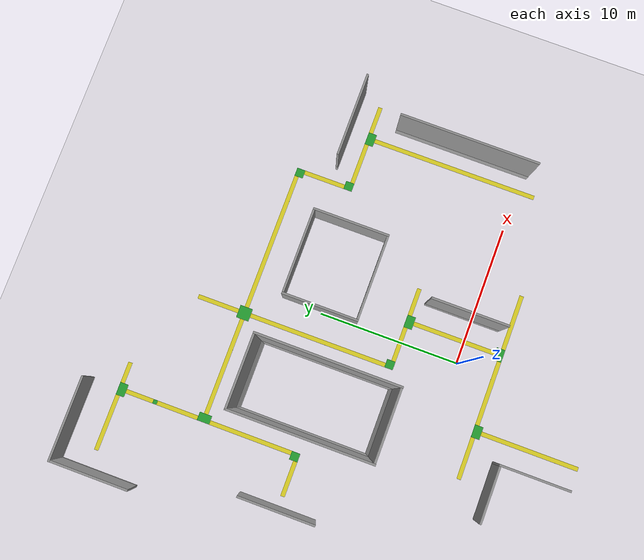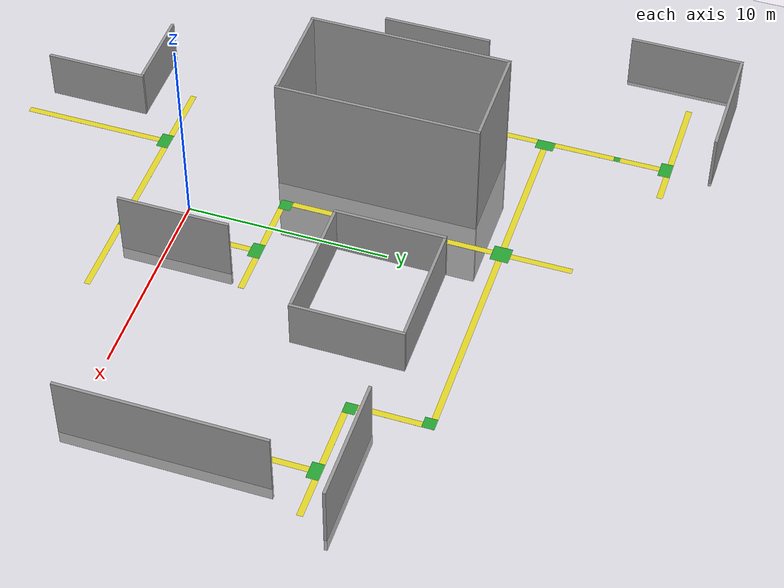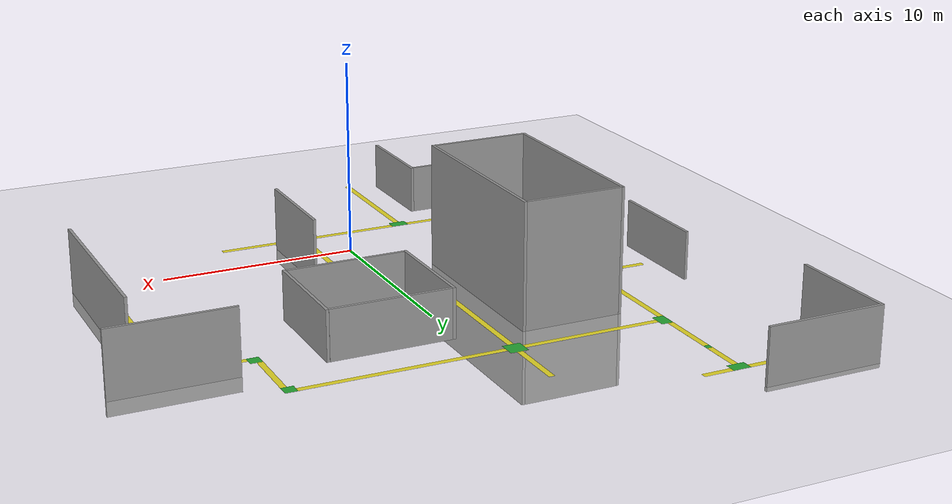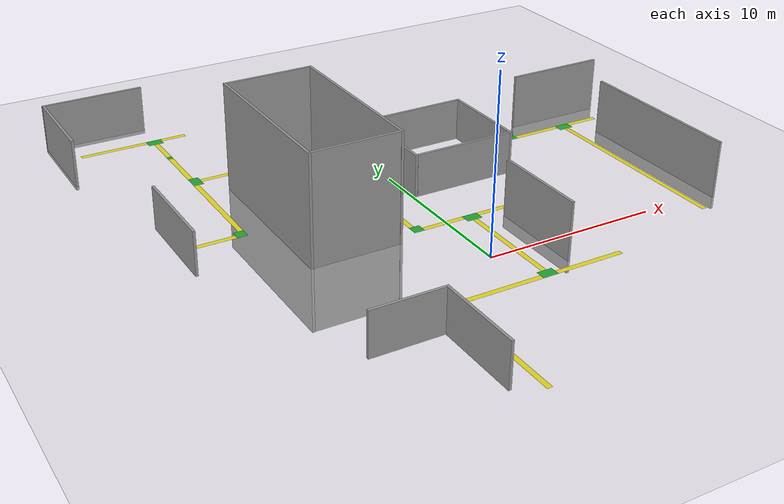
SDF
<sdf version="1.7">
 <world name="default">
  <light name="sun" type="directional">
   <pose>0 0 10 0 -0 0</pose>
   <diffuse>0.8 0.8 0.8 1</diffuse>
   <specular>0.2 0.2 0.2 1</specular>
   <attenuation>
    <range>1000</range>
    <constant>0.9</constant>
    <linear>0.01</linear>
    <quadratic>0.001</quadratic>
   </attenuation>
   <direction>-0.5 0.1 -0.9</direction>
   <spot><inner_angle>0</inner_angle><outer_angle>0</outer_angle><falloff>0</falloff></spot>
  </light>
  <include><uri>model://sideblock_path</uri><pose>0 4 0 0 0 0</pose></include>
  <include><uri>model://sideblock_maze</uri></include>
  <model name="ground_plane">
   <static>1</static>
   <link name="link">
    <collision name="collision">
     <geometry><plane><normal>0 0 1</normal><size>100 100</size></plane></geometry>
     <surface>
      <contact><collide_bitmask>65535</collide_bitmask></contact>
      <friction><ode><mu>100</mu><mu2>50</mu2></ode></friction>
     </surface>
    </collision>
    <visual name="visual">
     <cast_shadows>0</cast_shadows>
     <geometry><plane><normal>0 0 1</normal><size>100 100</size></plane></geometry>
     <material>
      <script><uri>file://media/materials/scripts/gazebo.material</uri><name>Gazebo/Grey</name></script>
     </material>
    </visual>
   </link>
  </model>
  <gravity>0 0 -9.8</gravity>
  <magnetic_field>6e-06 2.3e-05 -4.2e-05</magnetic_field>
  <atmosphere type="adiabatic"/>
  <physics type="ode">
   <max_step_size>0.001</max_step_size>
   <real_time_factor>1</real_time_factor>
   <real_time_update_rate>1000</real_time_update_rate>
  </physics>
  <scene><ambient>0.4 0.4 0.4 1</ambient><background>0.7 0.7 0.7 1</background><shadows>1</shadows></scene>
  <spherical_coordinates>
   <surface_model>EARTH_WGS84</surface_model>
   <latitude_deg>0</latitude_deg>
   <longitude_deg>0</longitude_deg>
   <elevation>0</elevation>
   <heading_deg>0</heading_deg>
  </spherical_coordinates>
 </world>
</sdf>

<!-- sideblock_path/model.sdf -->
<sdf version='1.7'>
  <model name='sideblock_path'>
    <link name='Line_11'>
      <pose>-3.96901 -10.6787 -0.000333 0 0 -1.5708</pose>
      <self_collide>0</self_collide>
      <enable_wind>0</enable_wind>
      <kinematic>0</kinematic>
      <gravity>1</gravity>
      <inertial>
        <mass>1</mass>
        <pose>0 0 0 0 -0 0</pose>
        <inertia>
          <ixx>1</ixx>
          <ixy>0</ixy>
          <ixz>0</ixz>
          <iyy>1</iyy>
          <iyz>0</iyz>
          <izz>1</izz>
        </inertia>
      </inertial>
      <visual name='Line_11_Visual'>
        <pose>0 0 0.0005 0 -0 0</pose>
        <geometry>
          <box>
            <size>7 0.3 0.001</size>
          </box>
        </geometry>
        <material>
          <script>
            <uri>file://media/materials/scripts/gazebo.material</uri>
            <name>Gazebo/Yellow</name>
          </script>
          <shader type='pixel'>
            <normal_map>__default__</normal_map>
          </shader>
          <ambient>1 1 0 1</ambient>
          <diffuse>1 1 0 1</diffuse>
          <emissive>0 0 0 1</emissive>
        </material>
        <meta>
          <layer>0</layer>
        </meta>
        <transparency>0</transparency>
        <cast_shadows>1</cast_shadows>
      </visual>
    </link>
    <link name='Line_13'>
      <pose>-3.96901 -6.87868 0 0 -0 3.14159</pose>
      <self_collide>0</self_collide>
      <enable_wind>0</enable_wind>
      <kinematic>0</kinematic>
      <gravity>1</gravity>
      <inertial>
        <mass>1.82173</mass>
        <pose>0 0 0 0 -0 0</pose>
        <inertia>
          <ixx>0.451111</ixx>
          <ixy>0</ixy>
          <ixz>0</ixz>
          <iyy>0.165474</iyy>
          <iyz>0</iyz>
          <izz>0.312963</izz>
        </inertia>
      </inertial>
      <visual name='Line_13_Visual'>
        <pose>0 0 0.0005 0 -0 0</pose>
        <geometry>
          <box>
            <size>0.9 0.6 0.001</size>
          </box>
        </geometry>
        <material>
          <script>
            <uri>file://media/materials/scripts/gazebo.material</uri>
            <name>Gazebo/Green</name>
          </script>
          <shader type='pixel'/>
        </material>
        <meta>
          <layer>0</layer>
        </meta>
        <transparency>0</transparency>
        <cast_shadows>1</cast_shadows>
      </visual>
    </link>
    <link name='Line_14'>
      <pose>-3.66901 -7.32868 0 0 0 -3e-06</pose>
      <self_collide>0</self_collide>
      <enable_wind>0</enable_wind>
      <kinematic>0</kinematic>
      <gravity>1</gravity>
      <inertial>
        <mass>1</mass>
        <pose>0 0 0 0 -0 0</pose>
        <inertia>
          <ixx>1</ixx>
          <ixy>0</ixy>
          <ixz>0</ixz>
          <iyy>1</iyy>
          <iyz>0</iyz>
          <izz>1</izz>
        </inertia>
      </inertial>
      <visual name='Line_14_Visual'>
        <pose>0 0 0.0005 0 -0 0</pose>
        <geometry>
          <box>
            <size>0.3 0.3 0.001</size>
          </box>
        </geometry>
        <material>
          <script>
            <uri>file://media/materials/scripts/gazebo.material</uri>
            <name>Gazebo/GreyTransparent</name>
          </script>
          <shader type='pixel'/>
        </material>
        <meta>
          <layer>0</layer>
        </meta>
        <transparency>1</transparency>
        <cast_shadows>1</cast_shadows>
        <visible>0</visible>
      </visual>
    </link>
    <link name='Line_14_clone'>
      <pose>1.28057 -6.12869 -0.000333 0 0 -3e-06</pose>
      <self_collide>0</self_collide>
      <enable_wind>0</enable_wind>
      <kinematic>0</kinematic>
      <gravity>1</gravity>
      <inertial>
        <mass>1</mass>
        <pose>0 0 0 0 -0 0</pose>
        <inertia>
          <ixx>1</ixx>
          <ixy>0</ixy>
          <ixz>0</ixz>
          <iyy>1</iyy>
          <iyz>0</iyz>
          <izz>1</izz>
        </inertia>
      </inertial>
      <visual name='Line_14_Visual'>
        <pose>0 0 0.0005 0 -0 0</pose>
        <geometry>
          <box>
            <size>0.3 0.3 0.001</size>
          </box>
        </geometry>
        <material>
          <script>
            <uri>file://media/materials/scripts/gazebo.material</uri>
            <name>Gazebo/GreyTransparent</name>
          </script>
          <shader type='pixel'/>
        </material>
        <meta>
          <layer>0</layer>
        </meta>
        <transparency>1</transparency>
        <cast_shadows>1</cast_shadows>
      </visual>
    </link>
    <link name='Line_14_clone_0'>
      <pose>1.88059 -0.427979 0 0 0 -3e-06</pose>
      <self_collide>0</self_collide>
      <enable_wind>0</enable_wind>
      <kinematic>0</kinematic>
      <gravity>1</gravity>
      <inertial>
        <mass>1</mass>
        <pose>0 0 0 0 -0 0</pose>
        <inertia>
          <ixx>1</ixx>
          <ixy>0</ixy>
          <ixz>0</ixz>
          <iyy>1</iyy>
          <iyz>0</iyz>
          <izz>1</izz>
        </inertia>
      </inertial>
      <visual name='Line_14_Visual'>
        <pose>0 0 0.0005 0 -0 0</pose>
        <geometry>
          <box>
            <size>0.3 0.3 0.001</size>
          </box>
        </geometry>
        <material>
          <script>
            <uri>file://media/materials/scripts/gazebo.material</uri>
            <name>Gazebo/GreyTransparent</name>
          </script>
          <shader type='pixel'/>
        </material>
        <meta>
          <layer>0</layer>
        </meta>
        <transparency>1</transparency>
        <cast_shadows>1</cast_shadows>
        <visible>0</visible>
      </visual>
    </link>
    <link name='Line_23'>
      <pose>-1.19398 -6.72869 0 0 0 -3e-06</pose>
      <self_collide>0</self_collide>
      <enable_wind>0</enable_wind>
      <kinematic>0</kinematic>
      <gravity>1</gravity>
      <inertial>
        <mass>1</mass>
        <pose>0 0 0 0 -0 0</pose>
        <inertia>
          <ixx>1</ixx>
          <ixy>0</ixy>
          <ixz>0</ixz>
          <iyy>1</iyy>
          <iyz>0</iyz>
          <izz>1</izz>
        </inertia>
      </inertial>
      <visual name='Line_23_Visual'>
        <pose>0 0 0.0005 0 -0 0</pose>
        <geometry>
          <box>
            <size>4.65006 0.3 0.001</size>
          </box>
        </geometry>
        <material>
          <script>
            <uri>file://media/materials/scripts/gazebo.material</uri>
            <name>Gazebo/Yellow</name>
          </script>
          <shader type='pixel'>
            <normal_map>__default__</normal_map>
          </shader>
          <ambient>1 1 0 1</ambient>
          <diffuse>1 1 0 1</diffuse>
          <emissive>0 0 0 1</emissive>
        </material>
        <meta>
          <layer>0</layer>
        </meta>
        <transparency>0</transparency>
        <cast_shadows>1</cast_shadows>
      </visual>
    </link>
    <link name='Line_23_clone'>
      <pose>-5.91901 -6.72868 0 0 0 -3e-06</pose>
      <self_collide>0</self_collide>
      <enable_wind>0</enable_wind>
      <kinematic>0</kinematic>
      <gravity>1</gravity>
      <inertial>
        <mass>1</mass>
        <pose>0 0 0 0 -0 0</pose>
        <inertia>
          <ixx>1</ixx>
          <ixy>0</ixy>
          <ixz>0</ixz>
          <iyy>1</iyy>
          <iyz>0</iyz>
          <izz>1</izz>
        </inertia>
      </inertial>
      <visual name='Line_23_Visual'>
        <pose>0 0 0.0005 0 -0 0</pose>
        <geometry>
          <box>
            <size>3 0.3 0.001</size>
          </box>
        </geometry>
        <material>
          <script>
            <uri>file://media/materials/scripts/gazebo.material</uri>
            <name>Gazebo/Yellow</name>
          </script>
          <shader type='pixel'>
            <normal_map>__default__</normal_map>
          </shader>
          <ambient>1 1 0 1</ambient>
          <diffuse>1 1 0 1</diffuse>
          <emissive>0 0 0 1</emissive>
        </material>
        <meta>
          <layer>0</layer>
        </meta>
        <transparency>0</transparency>
        <cast_shadows>1</cast_shadows>
      </visual>
    </link>
    <link name='Line_24'>
      <pose>1.58105 -6.57869 0 0 -0 1.57159</pose>
      <self_collide>0</self_collide>
      <enable_wind>0</enable_wind>
      <kinematic>0</kinematic>
      <gravity>1</gravity>
      <inertial>
        <mass>1</mass>
        <pose>0 0 0 0 -0 0</pose>
        <inertia>
          <ixx>1</ixx>
          <ixy>0</ixy>
          <ixz>0</ixz>
          <iyy>1</iyy>
          <iyz>0</iyz>
          <izz>1</izz>
        </inertia>
      </inertial>
      <visual name='Line_24_Visual'>
        <pose>0 0 0.0005 0 -0 1.57</pose>
        <geometry>
          <box>
            <size>0.9 0.6 0.001</size>
          </box>
        </geometry>
        <material>
          <script>
            <uri>file://media/materials/scripts/gazebo.material</uri>
            <name>Gazebo/Green</name>
          </script>
          <shader type='pixel'/>
        </material>
        <meta>
          <layer>0</layer>
        </meta>
        <transparency>0</transparency>
        <cast_shadows>1</cast_shadows>
      </visual>
    </link>
    <link name='Line_24_clone'>
      <pose>1.58011 0.022736 0 0 -0 1.57159</pose>
      <self_collide>0</self_collide>
      <enable_wind>0</enable_wind>
      <kinematic>0</kinematic>
      <gravity>1</gravity>
      <inertial>
        <mass>1</mass>
        <pose>0 0 0 0 -0 0</pose>
        <inertia>
          <ixx>1</ixx>
          <ixy>0</ixy>
          <ixz>0</ixz>
          <iyy>1</iyy>
          <iyz>0</iyz>
          <izz>1</izz>
        </inertia>
      </inertial>
      <visual name='Line_24_Visual'>
        <pose>0 0 0.0005 0 -0 1.57</pose>
        <geometry>
          <box>
            <size>0.9 0.6 0.001</size>
          </box>
        </geometry>
        <material>
          <script>
            <uri>file://media/materials/scripts/gazebo.material</uri>
            <name>Gazebo/Green</name>
          </script>
          <shader type='pixel'/>
        </material>
        <meta>
          <layer>0</layer>
        </meta>
        <transparency>0</transparency>
        <cast_shadows>1</cast_shadows>
      </visual>
    </link>
    <link name='Line_24_clone_clone'>
      <pose>-1.67132 0.319953 0 0 -0 1.57159</pose>
      <self_collide>0</self_collide>
      <enable_wind>0</enable_wind>
      <kinematic>0</kinematic>
      <gravity>1</gravity>
      <inertial>
        <mass>1</mass>
        <pose>0 0 0 0 -0 0</pose>
        <inertia>
          <ixx>1</ixx>
          <ixy>0</ixy>
          <ixz>0</ixz>
          <iyy>1</iyy>
          <iyz>0</iyz>
          <izz>1</izz>
        </inertia>
      </inertial>
      <visual name='Line_24_Visual'>
        <pose>0 0 0.0005 0 -0 1.57</pose>
        <geometry>
          <box>
            <size>0.6 0.6 0.001</size>
          </box>
        </geometry>
        <material>
          <script>
            <uri>file://media/materials/scripts/gazebo.material</uri>
            <name>Gazebo/Green</name>
          </script>
          <shader type='pixel'>
            <normal_map>__default__</normal_map>
          </shader>
          <ambient>0 1 0 1</ambient>
          <diffuse>0 1 0 1</diffuse>
          <specular>0.1 0.1 0.1 1</specular>
          <emissive>0 0 0 1</emissive>
        </material>
        <meta>
          <layer>0</layer>
        </meta>
        <transparency>0</transparency>
        <cast_shadows>1</cast_shadows>
      </visual>
    </link>
    <link name='Line_24_clone_clone_0'>
      <pose>-1.82177 11.0711 0 0 -0 1.57159</pose>
      <self_collide>0</self_collide>
      <enable_wind>0</enable_wind>
      <kinematic>0</kinematic>
      <gravity>1</gravity>
      <inertial>
        <mass>1</mass>
        <pose>0 0 0 0 -0 0</pose>
        <inertia>
          <ixx>1</ixx>
          <ixy>0</ixy>
          <ixz>0</ixz>
          <iyy>1</iyy>
          <iyz>0</iyz>
          <izz>1</izz>
        </inertia>
      </inertial>
      <visual name='Line_24_Visual'>
        <pose>0 0 0.0005 0 -0 1.57</pose>
        <geometry>
          <box>
            <size>0.9 0.9 0.001</size>
          </box>
        </geometry>
        <material>
          <script>
            <uri>file://media/materials/scripts/gazebo.material</uri>
            <name>Gazebo/Green</name>
          </script>
          <shader type='pixel'>
            <normal_map>__default__</normal_map>
          </shader>
          <ambient>0 1 0 1</ambient>
          <diffuse>0 1 0 1</diffuse>
          <specular>0.1 0.1 0.1 1</specular>
          <emissive>0 0 0 1</emissive>
        </material>
        <meta>
          <layer>0</layer>
        </meta>
        <transparency>0</transparency>
        <cast_shadows>1</cast_shadows>
      </visual>
    </link>
    <link name='Line_24_clone_clone_1'>
      <pose>-9.57332 11.0711 0 0 -0 1.57159</pose>
      <self_collide>0</self_collide>
      <enable_wind>0</enable_wind>
      <kinematic>0</kinematic>
      <gravity>1</gravity>
      <inertial>
        <mass>1</mass>
        <pose>0 0 0 0 -0 0</pose>
        <inertia>
          <ixx>1</ixx>
          <ixy>0</ixy>
          <ixz>0</ixz>
          <iyy>1</iyy>
          <iyz>0</iyz>
          <izz>1</izz>
        </inertia>
      </inertial>
      <visual name='Line_24_Visual'>
        <pose>0 0 0.0005 0 -0 0</pose>
        <geometry>
          <box>
            <size>0.9 0.6 0.001</size>
          </box>
        </geometry>
        <material>
          <script>
            <uri>file://media/materials/scripts/gazebo.material</uri>
            <name>Gazebo/Green</name>
          </script>
          <shader type='pixel'>
            <normal_map>__default__</normal_map>
          </shader>
          <ambient>0 1 0 1</ambient>
          <diffuse>0 1 0 1</diffuse>
          <specular>0.1 0.1 0.1 1</specular>
          <emissive>0 0 0 1</emissive>
        </material>
        <meta>
          <layer>0</layer>
        </meta>
        <transparency>0</transparency>
        <cast_shadows>1</cast_shadows>
      </visual>
    </link>
    <link name='Line_24_clone_clone_1_clone'>
      <pose>-9.72367 14.6715 0 0 -0 1.57159</pose>
      <self_collide>0</self_collide>
      <enable_wind>0</enable_wind>
      <kinematic>0</kinematic>
      <gravity>1</gravity>
      <inertial>
        <mass>1</mass>
        <pose>0 0 0 0 -0 0</pose>
        <inertia>
          <ixx>1</ixx>
          <ixy>0</ixy>
          <ixz>0</ixz>
          <iyy>1</iyy>
          <iyz>0</iyz>
          <izz>1</izz>
        </inertia>
      </inertial>
      <visual name='Line_24_Visual'>
        <pose>0 0 0.0005 0 -0 0</pose>
        <geometry>
          <box>
            <size>0.3 0.3 0.001</size>
          </box>
        </geometry>
        <material>
          <script>
            <uri>file://media/materials/scripts/gazebo.material</uri>
            <name>Gazebo/Green</name>
          </script>
          <shader type='pixel'>
            <normal_map>__default__</normal_map>
          </shader>
          <ambient>0 1 0 1</ambient>
          <diffuse>0 1 0 1</diffuse>
          <specular>0.1 0.1 0.1 1</specular>
          <emissive>0 0 0 1</emissive>
        </material>
        <meta>
          <layer>0</layer>
        </meta>
        <transparency>0</transparency>
        <cast_shadows>1</cast_shadows>
      </visual>
    </link>
    <link name='Line_24_clone_clone_1_clone_0'>
      <pose>-9.72367 17.1224 0 0 -0 1.57159</pose>
      <self_collide>0</self_collide>
      <enable_wind>0</enable_wind>
      <kinematic>0</kinematic>
      <gravity>1</gravity>
      <inertial>
        <mass>1</mass>
        <pose>0 0 0 0 -0 0</pose>
        <inertia>
          <ixx>1</ixx>
          <ixy>0</ixy>
          <ixz>0</ixz>
          <iyy>1</iyy>
          <iyz>0</iyz>
          <izz>1</izz>
        </inertia>
      </inertial>
      <visual name='Line_24_Visual'>
        <pose>0 0 0.0005 0 -0 1.57</pose>
        <geometry>
          <box>
            <size>0.9 0.6 0.001</size>
          </box>
        </geometry>
        <material>
          <script>
            <uri>file://media/materials/scripts/gazebo.material</uri>
            <name>Gazebo/Green</name>
          </script>
          <shader type='pixel'>
            <normal_map>__default__</normal_map>
          </shader>
          <ambient>0 1 0 1</ambient>
          <diffuse>0 1 0 1</diffuse>
          <specular>0.1 0.1 0.1 1</specular>
          <emissive>0 0 0 1</emissive>
        </material>
        <meta>
          <layer>0</layer>
        </meta>
        <transparency>0</transparency>
        <cast_shadows>1</cast_shadows>
      </visual>
    </link>
    <link name='Line_24_clone_clone_2'>
      <pose>12.9823 7.03119 0 0 -0 1.57159</pose>
      <self_collide>0</self_collide>
      <enable_wind>0</enable_wind>
      <kinematic>0</kinematic>
      <gravity>1</gravity>
      <inertial>
        <mass>1</mass>
        <pose>0 0 0 0 -0 0</pose>
        <inertia>
          <ixx>1</ixx>
          <ixy>0</ixy>
          <ixz>0</ixz>
          <iyy>1</iyy>
          <iyz>0</iyz>
          <izz>1</izz>
        </inertia>
      </inertial>
      <visual name='Line_24_Visual'>
        <pose>0 0 0.0005 0 -0 1.57</pose>
        <geometry>
          <box>
            <size>0.9 0.6 0.001</size>
          </box>
        </geometry>
        <material>
          <script>
            <uri>file://media/materials/scripts/gazebo.material</uri>
            <name>Gazebo/Green</name>
          </script>
          <shader type='pixel'/>
        </material>
        <meta>
          <layer>0</layer>
        </meta>
        <transparency>0</transparency>
        <cast_shadows>1</cast_shadows>
      </visual>
    </link>
    <link name='Line_24_clone_clone_clone'>
      <pose>-9.87411 4.32043 0 0 -0 1.57159</pose>
      <self_collide>0</self_collide>
      <enable_wind>0</enable_wind>
      <kinematic>0</kinematic>
      <gravity>1</gravity>
      <inertial>
        <mass>1</mass>
        <pose>0 0 0 0 -0 0</pose>
        <inertia>
          <ixx>1</ixx>
          <ixy>0</ixy>
          <ixz>0</ixz>
          <iyy>1</iyy>
          <iyz>0</iyz>
          <izz>1</izz>
        </inertia>
      </inertial>
      <visual name='Line_24_Visual'>
        <pose>0 0 0.0005 0 -0 1.57</pose>
        <geometry>
          <box>
            <size>0.6 0.6 0.001</size>
          </box>
        </geometry>
        <material>
          <script>
            <uri>file://media/materials/scripts/gazebo.material</uri>
            <name>Gazebo/Green</name>
          </script>
          <shader type='pixel'>
            <normal_map>__default__</normal_map>
          </shader>
          <ambient>0 1 0 1</ambient>
          <diffuse>0 1 0 1</diffuse>
          <specular>0.1 0.1 0.1 1</specular>
          <emissive>0 0 0 1</emissive>
        </material>
        <meta>
          <layer>0</layer>
        </meta>
        <transparency>0</transparency>
        <cast_shadows>1</cast_shadows>
      </visual>
    </link>
    <link name='Line_24_clone_clone_clone_0'>
      <pose>8.9299 10.9286 0 0 -0 1.57159</pose>
      <self_collide>0</self_collide>
      <enable_wind>0</enable_wind>
      <kinematic>0</kinematic>
      <gravity>1</gravity>
      <inertial>
        <mass>1</mass>
        <pose>0 0 0 0 -0 0</pose>
        <inertia>
          <ixx>1</ixx>
          <ixy>0</ixy>
          <ixz>0</ixz>
          <iyy>1</iyy>
          <iyz>0</iyz>
          <izz>1</izz>
        </inertia>
      </inertial>
      <visual name='Line_24_Visual'>
        <pose>0 0 0.0005 0 -0 1.57</pose>
        <geometry>
          <box>
            <size>0.6 0.6 0.001</size>
          </box>
        </geometry>
        <material>
          <script>
            <uri>file://media/materials/scripts/gazebo.material</uri>
            <name>Gazebo/Green</name>
          </script>
          <shader type='pixel'>
            <normal_map>__default__</normal_map>
          </shader>
          <ambient>0 1 0 1</ambient>
          <diffuse>0 1 0 1</diffuse>
          <specular>0.1 0.1 0.1 1</specular>
          <emissive>0 0 0 1</emissive>
        </material>
        <meta>
          <layer>0</layer>
        </meta>
        <transparency>0</transparency>
        <cast_shadows>1</cast_shadows>
      </visual>
    </link>
    <link name='Line_24_clone_clone_clone_0_clone'>
      <pose>9.23084 7.32762 0 0 -0 1.57159</pose>
      <self_collide>0</self_collide>
      <enable_wind>0</enable_wind>
      <kinematic>0</kinematic>
      <gravity>1</gravity>
      <inertial>
        <mass>1</mass>
        <pose>0 0 0 0 -0 0</pose>
        <inertia>
          <ixx>1</ixx>
          <ixy>0</ixy>
          <ixz>0</ixz>
          <iyy>1</iyy>
          <iyz>0</iyz>
          <izz>1</izz>
        </inertia>
      </inertial>
      <visual name='Line_24_Visual'>
        <pose>0 0 0.0005 0 -0 1.57</pose>
        <geometry>
          <box>
            <size>0.6 0.6 0.001</size>
          </box>
        </geometry>
        <material>
          <script>
            <uri>file://media/materials/scripts/gazebo.material</uri>
            <name>Gazebo/Green</name>
          </script>
          <shader type='pixel'>
            <normal_map>__default__</normal_map>
          </shader>
          <ambient>0 1 0 1</ambient>
          <diffuse>0 1 0 1</diffuse>
          <specular>0.1 0.1 0.1 1</specular>
          <emissive>0 0 0 1</emissive>
        </material>
        <meta>
          <layer>0</layer>
        </meta>
        <transparency>0</transparency>
        <cast_shadows>1</cast_shadows>
      </visual>
    </link>
    <link name='Line_25'>
      <pose>4.03105 -6.72869 -0.000333 0 -0 1.57159</pose>
      <self_collide>0</self_collide>
      <enable_wind>0</enable_wind>
      <kinematic>0</kinematic>
      <gravity>1</gravity>
      <inertial>
        <mass>1</mass>
        <pose>0 0 0 0 -0 0</pose>
        <inertia>
          <ixx>1</ixx>
          <ixy>0</ixy>
          <ixz>0</ixz>
          <iyy>1</iyy>
          <iyz>0</iyz>
          <izz>1</izz>
        </inertia>
      </inertial>
      <visual name='Line_25_Visual'>
        <pose>0 0 0.0005 0 -0 1.57</pose>
        <geometry>
          <box>
            <size>4 0.3 0.001</size>
          </box>
        </geometry>
        <material>
          <script>
            <uri>file://media/materials/scripts/gazebo.material</uri>
            <name>Gazebo/Yellow</name>
          </script>
          <shader type='pixel'>
            <normal_map>__default__</normal_map>
          </shader>
          <ambient>1 1 0 1</ambient>
          <diffuse>1 1 0 1</diffuse>
          <emissive>0 0 0 1</emissive>
        </material>
        <meta>
          <layer>0</layer>
        </meta>
        <transparency>0</transparency>
        <cast_shadows>1</cast_shadows>
      </visual>
    </link>
    <link name='Line_25_clone'>
      <pose>3.03083 0.170272 -0.000333 0 -0 1.57159</pose>
      <self_collide>0</self_collide>
      <enable_wind>0</enable_wind>
      <kinematic>0</kinematic>
      <gravity>1</gravity>
      <inertial>
        <mass>1</mass>
        <pose>0 0 0 0 -0 0</pose>
        <inertia>
          <ixx>1</ixx>
          <ixy>0</ixy>
          <ixz>0</ixz>
          <iyy>1</iyy>
          <iyz>0</iyz>
          <izz>1</izz>
        </inertia>
      </inertial>
      <visual name='Line_25_Visual'>
        <pose>0 0 0.0005 0 -0 1.57</pose>
        <geometry>
          <box>
            <size>2 0.3 0.001</size>
          </box>
        </geometry>
        <material>
          <script>
            <uri>file://media/materials/scripts/gazebo.material</uri>
            <name>Gazebo/Yellow</name>
          </script>
          <shader type='pixel'>
            <normal_map>__default__</normal_map>
          </shader>
          <ambient>1 1 0 1</ambient>
          <diffuse>1 1 0 1</diffuse>
          <emissive>0 0 0 1</emissive>
        </material>
        <meta>
          <layer>0</layer>
        </meta>
        <transparency>0</transparency>
        <cast_shadows>1</cast_shadows>
      </visual>
    </link>
    <link name='Line_25_clone_0'>
      <pose>-0.120605 0.171464 -0.000333 0 -0 1.57159</pose>
      <self_collide>0</self_collide>
      <enable_wind>0</enable_wind>
      <kinematic>0</kinematic>
      <gravity>1</gravity>
      <inertial>
        <mass>1</mass>
        <pose>0 0 0 0 -0 0</pose>
        <inertia>
          <ixx>1</ixx>
          <ixy>0</ixy>
          <ixz>0</ixz>
          <iyy>1</iyy>
          <iyz>0</iyz>
          <izz>1</izz>
        </inertia>
      </inertial>
      <visual name='Line_25_Visual'>
        <pose>0 0 0.0005 0 -0 1.57</pose>
        <geometry>
          <box>
            <size>2.5 0.3 0.001</size>
          </box>
        </geometry>
        <material>
          <script>
            <uri>file://media/materials/scripts/gazebo.material</uri>
            <name>Gazebo/Yellow</name>
          </script>
          <shader type='pixel'>
            <normal_map>__default__</normal_map>
          </shader>
          <ambient>1 1 0 1</ambient>
          <diffuse>1 1 0 1</diffuse>
          <emissive>0 0 0 1</emissive>
        </material>
        <meta>
          <layer>0</layer>
        </meta>
        <transparency>0</transparency>
        <cast_shadows>1</cast_shadows>
      </visual>
    </link>
    <link name='Line_25_clone_0_clone'>
      <pose>-5.77272 11.0711 -0.000333 0 -0 1.57159</pose>
      <self_collide>0</self_collide>
      <enable_wind>0</enable_wind>
      <kinematic>0</kinematic>
      <gravity>1</gravity>
      <inertial>
        <mass>1</mass>
        <pose>0 0 0 0 -0 0</pose>
        <inertia>
          <ixx>1</ixx>
          <ixy>0</ixy>
          <ixz>0</ixz>
          <iyy>1</iyy>
          <iyz>0</iyz>
          <izz>1</izz>
        </inertia>
      </inertial>
      <visual name='Line_25_Visual'>
        <pose>0 0 0.0005 0 -0 1.57</pose>
        <geometry>
          <box>
            <size>7 0.3 0.001</size>
          </box>
        </geometry>
        <material>
          <script>
            <uri>file://media/materials/scripts/gazebo.material</uri>
            <name>Gazebo/Yellow</name>
          </script>
          <shader type='pixel'>
            <normal_map>__default__</normal_map>
          </shader>
          <ambient>1 1 0 1</ambient>
          <diffuse>1 1 0 1</diffuse>
          <emissive>0 0 0 1</emissive>
        </material>
        <meta>
          <layer>0</layer>
        </meta>
        <transparency>0</transparency>
        <cast_shadows>1</cast_shadows>
      </visual>
    </link>
    <link name='Line_25_clone_0_clone_0'>
      <pose>3.62918 11.0711 -0.000333 0 -0 1.57159</pose>
      <self_collide>0</self_collide>
      <enable_wind>0</enable_wind>
      <kinematic>0</kinematic>
      <gravity>1</gravity>
      <inertial>
        <mass>1</mass>
        <pose>0 0 0 0 -0 0</pose>
        <inertia>
          <ixx>1</ixx>
          <ixy>0</ixy>
          <ixz>0</ixz>
          <iyy>1</iyy>
          <iyz>0</iyz>
          <izz>1</izz>
        </inertia>
      </inertial>
      <visual name='Line_25_Visual'>
        <pose>0 0 0.0005 0 -0 1.57</pose>
        <geometry>
          <box>
            <size>10 0.3 0.001</size>
          </box>
        </geometry>
        <material>
          <script>
            <uri>file://media/materials/scripts/gazebo.material</uri>
            <name>Gazebo/Yellow</name>
          </script>
          <shader type='pixel'>
            <normal_map>__default__</normal_map>
          </shader>
          <ambient>1 1 0 1</ambient>
          <diffuse>1 1 0 1</diffuse>
          <emissive>0 0 0 1</emissive>
        </material>
        <meta>
          <layer>0</layer>
        </meta>
        <transparency>0</transparency>
        <cast_shadows>1</cast_shadows>
      </visual>
    </link>
    <link name='Line_25_clone_0_clone_0_clone'>
      <pose>-11.4248 4.17194 -0.000333 0 -0 1.57159</pose>
      <self_collide>0</self_collide>
      <enable_wind>0</enable_wind>
      <kinematic>0</kinematic>
      <gravity>1</gravity>
      <inertial>
        <mass>1</mass>
        <pose>0 0 0 0 -0 0</pose>
        <inertia>
          <ixx>1</ixx>
          <ixy>0</ixy>
          <ixz>0</ixz>
          <iyy>1</iyy>
          <iyz>0</iyz>
          <izz>1</izz>
        </inertia>
      </inertial>
      <visual name='Line_25_Visual'>
        <pose>0 0 0.0005 0 -0 1.57</pose>
        <geometry>
          <box>
            <size>2.5 0.3 0.001</size>
          </box>
        </geometry>
        <material>
          <script>
            <uri>file://media/materials/scripts/gazebo.material</uri>
            <name>Gazebo/Yellow</name>
          </script>
          <shader type='pixel'>
            <normal_map>__default__</normal_map>
          </shader>
          <ambient>1 1 0 1</ambient>
          <diffuse>1 1 0 1</diffuse>
          <emissive>0 0 0 1</emissive>
        </material>
        <meta>
          <layer>0</layer>
        </meta>
        <transparency>0</transparency>
        <cast_shadows>1</cast_shadows>
      </visual>
    </link>
    <link name='Line_25_clone_0_clone_0_clone_clone'>
      <pose>-8.52295 17.2719 -0.000333 0 -0 1.57159</pose>
      <self_collide>0</self_collide>
      <enable_wind>0</enable_wind>
      <kinematic>0</kinematic>
      <gravity>1</gravity>
      <inertial>
        <mass>1</mass>
        <pose>0 0 0 0 -0 0</pose>
        <inertia>
          <ixx>1</ixx>
          <ixy>0</ixy>
          <ixz>0</ixz>
          <iyy>1</iyy>
          <iyz>0</iyz>
          <izz>1</izz>
        </inertia>
      </inertial>
      <visual name='Line_25_Visual'>
        <pose>0 0 0.0005 0 -0 1.57</pose>
        <geometry>
          <box>
            <size>1.5 0.3 0.001</size>
          </box>
        </geometry>
        <material>
          <script>
            <uri>file://media/materials/scripts/gazebo.material</uri>
            <name>Gazebo/Yellow</name>
          </script>
          <shader type='pixel'>
            <normal_map>__default__</normal_map>
          </shader>
          <ambient>1 1 0 1</ambient>
          <diffuse>1 1 0 1</diffuse>
          <emissive>0 0 0 1</emissive>
        </material>
        <meta>
          <layer>0</layer>
        </meta>
        <transparency>0</transparency>
        <cast_shadows>1</cast_shadows>
      </visual>
    </link>
    <link name='Line_25_clone_0_clone_0_clone_clone_0'>
      <pose>-12.1744 17.2699 -0.000333 0 -0 1.57159</pose>
      <self_collide>0</self_collide>
      <enable_wind>0</enable_wind>
      <kinematic>0</kinematic>
      <gravity>1</gravity>
      <inertial>
        <mass>1</mass>
        <pose>0 0 0 0 -0 0</pose>
        <inertia>
          <ixx>1</ixx>
          <ixy>0</ixy>
          <ixz>0</ixz>
          <iyy>1</iyy>
          <iyz>0</iyz>
          <izz>1</izz>
        </inertia>
      </inertial>
      <visual name='Line_25_Visual'>
        <pose>0 0 0.0005 0 -0 1.57</pose>
        <geometry>
          <box>
            <size>4 0.3 0.001</size>
          </box>
        </geometry>
        <material>
          <script>
            <uri>file://media/materials/scripts/gazebo.material</uri>
            <name>Gazebo/Yellow</name>
          </script>
          <shader type='pixel'>
            <normal_map>__default__</normal_map>
          </shader>
          <ambient>1 1 0 1</ambient>
          <diffuse>1 1 0 1</diffuse>
          <emissive>0 0 0 1</emissive>
        </material>
        <meta>
          <layer>0</layer>
        </meta>
        <transparency>0</transparency>
        <cast_shadows>1</cast_shadows>
      </visual>
    </link>
    <link name='Line_25_clone_0_clone_clone'>
      <pose>11.0316 7.17952 -0.000333 0 -0 1.57159</pose>
      <self_collide>0</self_collide>
      <enable_wind>0</enable_wind>
      <kinematic>0</kinematic>
      <gravity>1</gravity>
      <inertial>
        <mass>1</mass>
        <pose>0 0 0 0 -0 0</pose>
        <inertia>
          <ixx>1</ixx>
          <ixy>0</ixy>
          <ixz>0</ixz>
          <iyy>1</iyy>
          <iyz>0</iyz>
          <izz>1</izz>
        </inertia>
      </inertial>
      <visual name='Line_25_Visual'>
        <pose>0 0 0.0005 0 -0 1.57</pose>
        <geometry>
          <box>
            <size>3 0.3 0.001</size>
          </box>
        </geometry>
        <material>
          <script>
            <uri>file://media/materials/scripts/gazebo.material</uri>
            <name>Gazebo/Yellow</name>
          </script>
          <shader type='pixel'>
            <normal_map>__default__</normal_map>
          </shader>
          <ambient>1 1 0 1</ambient>
          <diffuse>1 1 0 1</diffuse>
          <emissive>0 0 0 1</emissive>
        </material>
        <meta>
          <layer>0</layer>
        </meta>
        <transparency>0</transparency>
        <cast_shadows>1</cast_shadows>
      </visual>
    </link>
    <link name='Line_25_clone_0_clone_clone_clone'>
      <pose>14.433 7.18031 -0.000333 0 -0 1.57159</pose>
      <self_collide>0</self_collide>
      <enable_wind>0</enable_wind>
      <kinematic>0</kinematic>
      <gravity>1</gravity>
      <inertial>
        <mass>1</mass>
        <pose>0 0 0 0 -0 0</pose>
        <inertia>
          <ixx>1</ixx>
          <ixy>0</ixy>
          <ixz>0</ixz>
          <iyy>1</iyy>
          <iyz>0</iyz>
          <izz>1</izz>
        </inertia>
      </inertial>
      <visual name='Line_25_Visual'>
        <pose>0 0 0.0005 0 -0 1.57</pose>
        <geometry>
          <box>
            <size>2 0.3 0.001</size>
          </box>
        </geometry>
        <material>
          <script>
            <uri>file://media/materials/scripts/gazebo.material</uri>
            <name>Gazebo/Yellow</name>
          </script>
          <shader type='pixel'>
            <normal_map>__default__</normal_map>
          </shader>
          <ambient>1 1 0 1</ambient>
          <diffuse>1 1 0 1</diffuse>
          <emissive>0 0 0 1</emissive>
        </material>
        <meta>
          <layer>0</layer>
        </meta>
        <transparency>0</transparency>
        <cast_shadows>1</cast_shadows>
      </visual>
    </link>
    <link name='Line_26'>
      <pose>1.58057 -3.27798 -0.000333 0 -0 1.57079</pose>
      <self_collide>0</self_collide>
      <enable_wind>0</enable_wind>
      <kinematic>0</kinematic>
      <gravity>1</gravity>
      <inertial>
        <mass>1</mass>
        <pose>0 0 0 0 -0 0</pose>
        <inertia>
          <ixx>1</ixx>
          <ixy>0</ixy>
          <ixz>0</ixz>
          <iyy>1</iyy>
          <iyz>0</iyz>
          <izz>1</izz>
        </inertia>
      </inertial>
      <visual name='Line_26_Visual'>
        <pose>0 0 0.0005 0 -0 0</pose>
        <geometry>
          <box>
            <size>6 0.3 0.001</size>
          </box>
        </geometry>
        <material>
          <script>
            <uri>file://media/materials/scripts/gazebo.material</uri>
            <name>Gazebo/Yellow</name>
          </script>
          <shader type='pixel'>
            <normal_map>__default__</normal_map>
          </shader>
          <ambient>1 1 0 1</ambient>
          <diffuse>1 1 0 1</diffuse>
          <emissive>0 0 0 1</emissive>
        </material>
        <meta>
          <layer>0</layer>
        </meta>
        <transparency>0</transparency>
        <cast_shadows>1</cast_shadows>
      </visual>
    </link>
    <link name='Line_26_clone'>
      <pose>-1.82177 5.62043 -0.000333 0 -0 1.57079</pose>
      <self_collide>0</self_collide>
      <enable_wind>0</enable_wind>
      <kinematic>0</kinematic>
      <gravity>1</gravity>
      <inertial>
        <mass>1</mass>
        <pose>0 0 0 0 -0 0</pose>
        <inertia>
          <ixx>1</ixx>
          <ixy>0</ixy>
          <ixz>0</ixz>
          <iyy>1</iyy>
          <iyz>0</iyz>
          <izz>1</izz>
        </inertia>
      </inertial>
      <visual name='Line_26_Visual'>
        <pose>0 0 0.0005 0 -0 0</pose>
        <geometry>
          <box>
            <size>10 0.3 0.001</size>
          </box>
        </geometry>
        <material>
          <script>
            <uri>file://media/materials/scripts/gazebo.material</uri>
            <name>Gazebo/Yellow</name>
          </script>
          <shader type='pixel'>
            <normal_map>__default__</normal_map>
          </shader>
          <ambient>1 1 0 1</ambient>
          <diffuse>1 1 0 1</diffuse>
          <emissive>0 0 0 1</emissive>
        </material>
        <meta>
          <layer>0</layer>
        </meta>
        <transparency>0</transparency>
        <cast_shadows>1</cast_shadows>
      </visual>
    </link>
    <link name='Line_26_clone_0'>
      <pose>-1.82177 13.0219 -0.000333 0 -0 1.57079</pose>
      <self_collide>0</self_collide>
      <enable_wind>0</enable_wind>
      <kinematic>0</kinematic>
      <gravity>1</gravity>
      <inertial>
        <mass>1</mass>
        <pose>0 0 0 0 -0 0</pose>
        <inertia>
          <ixx>1</ixx>
          <ixy>0</ixy>
          <ixz>0</ixz>
          <iyy>1</iyy>
          <iyz>0</iyz>
          <izz>1</izz>
        </inertia>
      </inertial>
      <visual name='Line_26_Visual'>
        <pose>0 0 0.0005 0 -0 0</pose>
        <geometry>
          <box>
            <size>3 0.3 0.001</size>
          </box>
        </geometry>
        <material>
          <script>
            <uri>file://media/materials/scripts/gazebo.material</uri>
            <name>Gazebo/Yellow</name>
          </script>
          <shader type='pixel'>
            <normal_map>__default__</normal_map>
          </shader>
          <ambient>1 1 0 1</ambient>
          <diffuse>1 1 0 1</diffuse>
          <emissive>0 0 0 1</emissive>
        </material>
        <meta>
          <layer>0</layer>
        </meta>
        <transparency>0</transparency>
        <cast_shadows>1</cast_shadows>
      </visual>
    </link>
    <link name='Line_26_clone_0_clone'>
      <pose>-9.72367 13.0214 -0.000333 0 -0 1.57079</pose>
      <self_collide>0</self_collide>
      <enable_wind>0</enable_wind>
      <kinematic>0</kinematic>
      <gravity>1</gravity>
      <inertial>
        <mass>1</mass>
        <pose>0 0 0 0 -0 0</pose>
        <inertia>
          <ixx>1</ixx>
          <ixy>0</ixy>
          <ixz>0</ixz>
          <iyy>1</iyy>
          <iyz>0</iyz>
          <izz>1</izz>
        </inertia>
      </inertial>
      <visual name='Line_26_Visual'>
        <pose>0 0 0.0005 0 -0 0</pose>
        <geometry>
          <box>
            <size>3 0.3 0.001</size>
          </box>
        </geometry>
        <material>
          <script>
            <uri>file://media/materials/scripts/gazebo.material</uri>
            <name>Gazebo/Yellow</name>
          </script>
          <shader type='pixel'>
            <normal_map>__default__</normal_map>
          </shader>
          <ambient>1 1 0 1</ambient>
          <diffuse>1 1 0 1</diffuse>
          <emissive>0 0 0 1</emissive>
        </material>
        <meta>
          <layer>0</layer>
        </meta>
        <transparency>0</transparency>
        <cast_shadows>1</cast_shadows>
      </visual>
    </link>
    <link name='Line_26_clone_0_clone_0'>
      <pose>-9.72366 7.62091 -0.000333 0 -0 1.57079</pose>
      <self_collide>0</self_collide>
      <enable_wind>0</enable_wind>
      <kinematic>0</kinematic>
      <gravity>1</gravity>
      <inertial>
        <mass>1</mass>
        <pose>0 0 0 0 -0 0</pose>
        <inertia>
          <ixx>1</ixx>
          <ixy>0</ixy>
          <ixz>0</ixz>
          <iyy>1</iyy>
          <iyz>0</iyz>
          <izz>1</izz>
        </inertia>
      </inertial>
      <visual name='Line_26_Visual'>
        <pose>0 0 0.0005 0 -0 0</pose>
        <geometry>
          <box>
            <size>6 0.3 0.001</size>
          </box>
        </geometry>
        <material>
          <script>
            <uri>file://media/materials/scripts/gazebo.material</uri>
            <name>Gazebo/Yellow</name>
          </script>
          <shader type='pixel'>
            <normal_map>__default__</normal_map>
          </shader>
          <ambient>1 1 0 1</ambient>
          <diffuse>1 1 0 1</diffuse>
          <emissive>0 0 0 1</emissive>
        </material>
        <meta>
          <layer>0</layer>
        </meta>
        <transparency>0</transparency>
        <cast_shadows>1</cast_shadows>
      </visual>
    </link>
    <link name='Line_26_clone_0_clone_0_clone'>
      <pose>-9.72367 15.8216 -0.000333 0 -0 1.57079</pose>
      <self_collide>0</self_collide>
      <enable_wind>0</enable_wind>
      <kinematic>0</kinematic>
      <gravity>1</gravity>
      <inertial>
        <mass>1</mass>
        <pose>0 0 0 0 -0 0</pose>
        <inertia>
          <ixx>1</ixx>
          <ixy>0</ixy>
          <ixz>0</ixz>
          <iyy>1</iyy>
          <iyz>0</iyz>
          <izz>1</izz>
        </inertia>
      </inertial>
      <visual name='Line_26_Visual'>
        <pose>0 0 0.0005 0 -0 0</pose>
        <geometry>
          <box>
            <size>2 0.3 0.001</size>
          </box>
        </geometry>
        <material>
          <script>
            <uri>file://media/materials/scripts/gazebo.material</uri>
            <name>Gazebo/Yellow</name>
          </script>
          <shader type='pixel'>
            <normal_map>__default__</normal_map>
          </shader>
          <ambient>1 1 0 1</ambient>
          <diffuse>1 1 0 1</diffuse>
          <emissive>0 0 0 1</emissive>
        </material>
        <meta>
          <layer>0</layer>
        </meta>
        <transparency>0</transparency>
        <cast_shadows>1</cast_shadows>
      </visual>
    </link>
    <link name='Line_26_clone_0_clone_1'>
      <pose>9.08037 9.1281 -0.000333 0 -0 1.57079</pose>
      <self_collide>0</self_collide>
      <enable_wind>0</enable_wind>
      <kinematic>0</kinematic>
      <gravity>1</gravity>
      <inertial>
        <mass>1</mass>
        <pose>0 0 0 0 -0 0</pose>
        <inertia>
          <ixx>1</ixx>
          <ixy>0</ixy>
          <ixz>0</ixz>
          <iyy>1</iyy>
          <iyz>0</iyz>
          <izz>1</izz>
        </inertia>
      </inertial>
      <visual name='Line_26_Visual'>
        <pose>0 0 0.0005 0 -0 0</pose>
        <geometry>
          <box>
            <size>3 0.3 0.001</size>
          </box>
        </geometry>
        <material>
          <script>
            <uri>file://media/materials/scripts/gazebo.material</uri>
            <name>Gazebo/Yellow</name>
          </script>
          <shader type='pixel'>
            <normal_map>__default__</normal_map>
          </shader>
          <ambient>1 1 0 1</ambient>
          <diffuse>1 1 0 1</diffuse>
          <emissive>0 0 0 1</emissive>
        </material>
        <meta>
          <layer>0</layer>
        </meta>
        <transparency>0</transparency>
        <cast_shadows>1</cast_shadows>
      </visual>
    </link>
    <link name='Line_26_clone_0_clone_1_clone'>
      <pose>12.9823 0.730474 -0.000333 0 -0 1.57079</pose>
      <self_collide>0</self_collide>
      <enable_wind>0</enable_wind>
      <kinematic>0</kinematic>
      <gravity>1</gravity>
      <inertial>
        <mass>1</mass>
        <pose>0 0 0 0 -0 0</pose>
        <inertia>
          <ixx>1</ixx>
          <ixy>0</ixy>
          <ixz>0</ixz>
          <iyy>1</iyy>
          <iyz>0</iyz>
          <izz>1</izz>
        </inertia>
      </inertial>
      <visual name='Line_26_Visual'>
        <pose>0 0 0.0005 0 -0 0</pose>
        <geometry>
          <box>
            <size>12 0.3 0.001</size>
          </box>
        </geometry>
        <material>
          <script>
            <uri>file://media/materials/scripts/gazebo.material</uri>
            <name>Gazebo/Yellow</name>
          </script>
          <shader type='pixel'>
            <normal_map>__default__</normal_map>
          </shader>
          <ambient>1 1 0 1</ambient>
          <diffuse>1 1 0 1</diffuse>
          <emissive>0 0 0 1</emissive>
        </material>
        <meta>
          <layer>0</layer>
        </meta>
        <transparency>0</transparency>
        <cast_shadows>1</cast_shadows>
      </visual>
    </link>
    <static>1</static>
    <allow_auto_disable>1</allow_auto_disable>
  </model>
</sdf>
